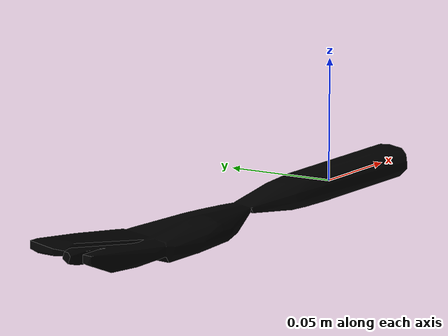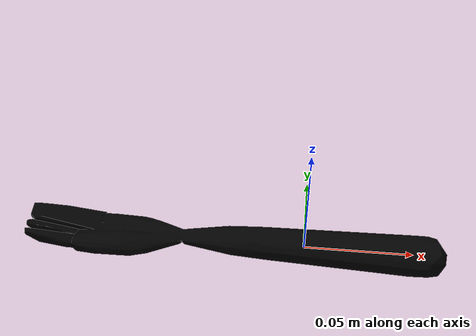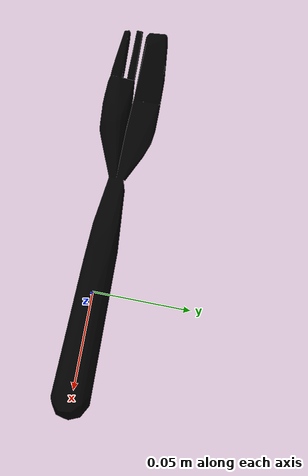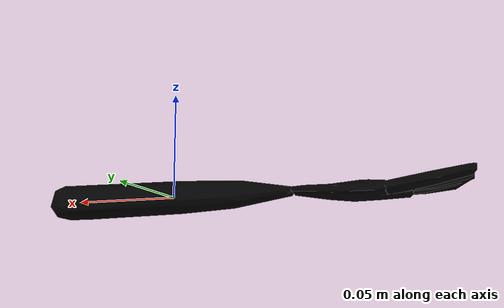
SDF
<?xml version="1.0"?>
<sdf version="1.4">
  <model name="030_fork_textured">
    <pose>0 0 0  0 0 0</pose>
    <link name="body">
      <inertial>
        <mass> 1.0 </mass>
        <pose>0 0 0 0 0 0</pose>
        <inertia>
          <ixx>3.3447162777553386e-05</ixx>
          <ixy>0.0</ixy>
          <ixz>0.0</ixz>
          <iyy>0.002393928947318322</iyy>
          <iyz>0.0</iyz>
          <izz>0.002409029064053124</izz>
        </inertia>
      </inertial>
      <visual name="visual">
        <geometry>
          <mesh>
            <uri>model://030_fork_textured/textured.dae</uri>
          </mesh>
        </geometry>
        <pose>-0.008612028950276842 -0.022176585380309297 0.003868154154315145 -3.017026531699682 -0.01334217095453899 -0.002714488955234063</pose>
      </visual>
      <collision name="collision">
        <geometry>
          <mesh>
            <uri>model://030_fork_textured/textured.col.dae</uri>
          </mesh>
        </geometry>
        <max_contacts>10</max_contacts>
        <surface>
          <friction>
            <ode>
              <mu>0.8</mu>
              <mu2>0.8</mu2>
              <slip1>0</slip1>
              <slip2>0</slip2>
            </ode>
            <torsional>
              <ode/>
            </torsional>
          </friction>
          <contact>
            <ode>
              <kp>1000000.0</kp>
              <kd>1.0</kd>
              <max_vel>0.0</max_vel>
            </ode>
          </contact>
        </surface>
        <pose>-0.008612028950276842 -0.022176585380309297 0.003868154154315145 -3.017026531699682 -0.01334217095453899 -0.002714488955234063</pose>
      </collision>
    </link>
  </model>
</sdf>
